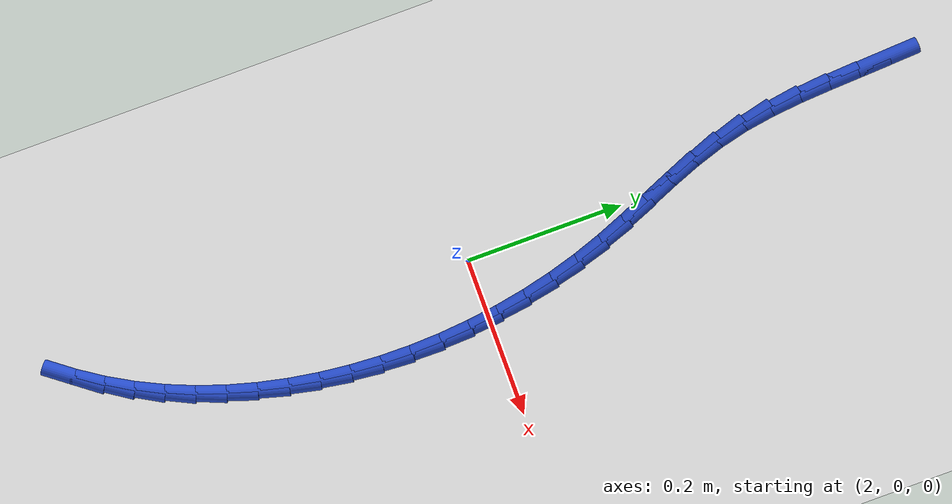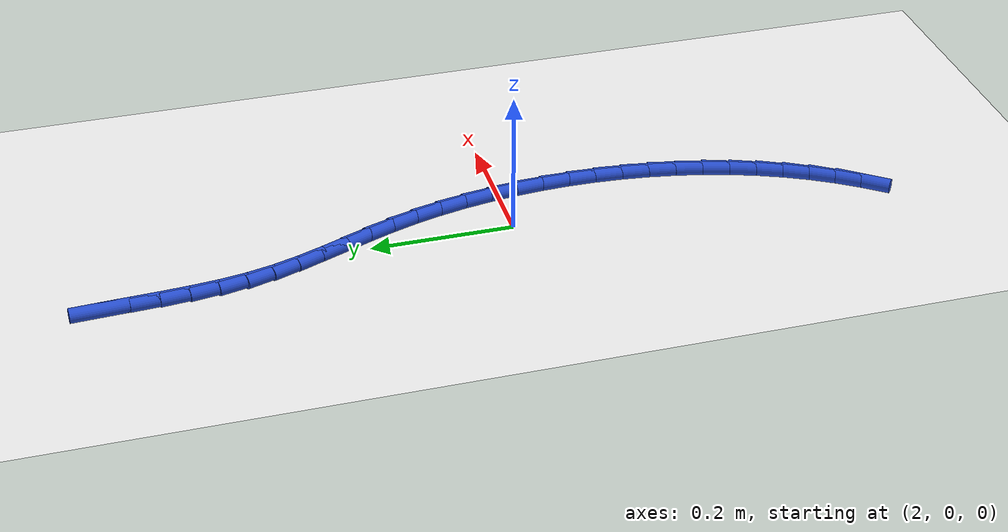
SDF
<sdf version="1.6">
 <world name="default">
  <model name="ground_plane">
   <static>1</static>
   <link name="link">
    <collision name="collision">
     <geometry><plane><normal>0 0 1</normal><size>100 100</size></plane></geometry>
     <surface><friction><ode><mu>100</mu><mu2>50</mu2></ode></friction></surface>
    </collision>
    <visual name="visual">
     <cast_shadows>0</cast_shadows>
     <geometry><plane><normal>0 0 1</normal><size>100 100</size></plane></geometry>
     <material>
      <script><uri>file://media/materials/scripts/gazebo.material</uri><name>Gazebo/WhiteGlow</name></script>
     </material>
    </visual>
   </link>
  </model>
  <model name="line">
   <link name="link_76">
    <pose>1.9415558615372037 0.5665186014770923 0.01 0 1.57 -1.5189127412592842</pose>
    <collision name="collision">
     <geometry><cylinder><radius>0.01</radius><length>0.08</length></cylinder></geometry>
    </collision>
    <visual name="visual">
     <material>
      <script><name>Gazebo/Blue</name><uri>file://media/materials/scripts/gazebo.material</uri></script>
     </material>
     <geometry><cylinder><radius>0.01</radius><length>0.08</length></cylinder></geometry>
    </visual>
   </link>
   <link name="link_77">
    <pose>1.9435597225822203 0.5279310090283251 0.01 0 1.57 -1.523355648347777</pose>
    <collision name="collision">
     <geometry><cylinder><radius>0.01</radius><length>0.08</length></cylinder></geometry>
    </collision>
    <visual name="visual">
     <material>
      <script><name>Gazebo/Blue</name><uri>file://media/materials/scripts/gazebo.material</uri></script>
     </material>
     <geometry><cylinder><radius>0.01</radius><length>0.08</length></cylinder></geometry>
    </visual>
   </link>
   <link name="link_78">
    <pose>1.9454072418871404 0.4890164501034754 0.01 0 1.57 -1.5081782893380407</pose>
    <collision name="collision">
     <geometry><cylinder><radius>0.01</radius><length>0.08</length></cylinder></geometry>
    </collision>
    <visual name="visual">
     <material>
      <script><name>Gazebo/Blue</name><uri>file://media/materials/scripts/gazebo.material</uri></script>
     </material>
     <geometry><cylinder><radius>0.01</radius><length>0.08</length></cylinder></geometry>
    </visual>
   </link>
   <link name="link_79">
    <pose>1.9478443605571356 0.45014693891050417 0.01 0 1.57 -1.4729970081427821</pose>
    <collision name="collision">
     <geometry><cylinder><radius>0.01</radius><length>0.08</length></cylinder></geometry>
    </collision>
    <visual name="visual">
     <material>
      <script><name>Gazebo/Blue</name><uri>file://media/materials/scripts/gazebo.material</uri></script>
     </material>
     <geometry><cylinder><radius>0.01</radius><length>0.08</length></cylinder></geometry>
    </visual>
   </link>
   <link name="link_80">
    <pose>1.951617019697378 0.4116944896573722 0.01 0 1.57 -1.4165969631609154</pose>
    <collision name="collision">
     <geometry><cylinder><radius>0.01</radius><length>0.08</length></cylinder></geometry>
    </collision>
    <visual name="visual">
     <material>
      <script><name>Gazebo/Blue</name><uri>file://media/materials/scripts/gazebo.material</uri></script>
     </material>
     <geometry><cylinder><radius>0.01</radius><length>0.08</length></cylinder></geometry>
    </visual>
   </link>
   <link name="link_81">
    <pose>1.9574711604130393 0.37403111655204174 0.01 0 1.57 -1.3382922465619933</pose>
    <collision name="collision">
     <geometry><cylinder><radius>0.01</radius><length>0.08</length></cylinder></geometry>
    </collision>
    <visual name="visual">
     <material>
      <script><name>Gazebo/Blue</name><uri>file://media/materials/scripts/gazebo.material</uri></script>
     </material>
     <geometry><cylinder><radius>0.01</radius><length>0.08</length></cylinder></geometry>
    </visual>
   </link>
   <link name="link_82">
    <pose>1.9661183977044896 0.3375119511595025 0.01 0 1.57 -1.2598143001252524</pose>
    <collision name="collision">
     <geometry><cylinder><radius>0.01</radius><length>0.08</length></cylinder></geometry>
    </collision>
    <visual name="visual">
     <material>
      <script><name>Gazebo/Blue</name><uri>file://media/materials/scripts/gazebo.material</uri></script>
     </material>
     <geometry><cylinder><radius>0.01</radius><length>0.08</length></cylinder></geometry>
    </visual>
   </link>
   <link name="link_83">
    <pose>1.9774964756654578 0.3021115113311145 0.01 0 1.57 -1.2050917626555757</pose>
    <collision name="collision">
     <geometry><cylinder><radius>0.01</radius><length>0.08</length></cylinder></geometry>
    </collision>
    <visual name="visual">
     <material>
      <script><name>Gazebo/Blue</name><uri>file://media/materials/scripts/gazebo.material</uri></script>
     </material>
     <geometry><cylinder><radius>0.01</radius><length>0.08</length></cylinder></geometry>
    </visual>
   </link>
   <link name="link_84">
    <pose>1.9907778522190458 0.2674279234440399 0.01 0 1.57 -1.1760649935759395</pose>
    <collision name="collision">
     <geometry><cylinder><radius>0.01</radius><length>0.08</length></cylinder></geometry>
    </collision>
    <visual name="visual">
     <material>
      <script><name>Gazebo/Blue</name><uri>file://media/materials/scripts/gazebo.material</uri></script>
     </material>
     <geometry><cylinder><radius>0.01</radius><length>0.08</length></cylinder></geometry>
    </visual>
   </link>
   <link name="link_85">
    <pose>2.0051023761977387 0.23304327571329653 0.01 0 1.57 -1.1727742127499625</pose>
    <collision name="collision">
     <geometry><cylinder><radius>0.01</radius><length>0.08</length></cylinder></geometry>
    </collision>
    <visual name="visual">
     <material>
      <script><name>Gazebo/Blue</name><uri>file://media/materials/scripts/gazebo.material</uri></script>
     </material>
     <geometry><cylinder><radius>0.01</radius><length>0.08</length></cylinder></geometry>
    </visual>
   </link>
   <link name="link_86">
    <pose>2.0196098964340194 0.19853965635390383 0.01 0 1.57 -1.1948702393190807</pose>
    <collision name="collision">
     <geometry><cylinder><radius>0.01</radius><length>0.08</length></cylinder></geometry>
    </collision>
    <visual name="visual">
     <material>
      <script><name>Gazebo/Blue</name><uri>file://media/materials/scripts/gazebo.material</uri></script>
     </material>
     <geometry><cylinder><radius>0.01</radius><length>0.08</length></cylinder></geometry>
    </visual>
   </link>
   <link name="link_87">
    <pose>2.033440261760374 0.16349915358087985 0.01 0 1.57 -1.239905362925592</pose>
    <collision name="collision">
     <geometry><cylinder><radius>0.01</radius><length>0.08</length></cylinder></geometry>
    </collision>
    <visual name="visual">
     <material>
      <script><name>Gazebo/Blue</name><uri>file://media/materials/scripts/gazebo.material</uri></script>
     </material>
     <geometry><cylinder><radius>0.01</radius><length>0.08</length></cylinder></geometry>
    </visual>
   </link>
   <link name="link_88">
    <pose>2.0457916765063926 0.12754377751374224 0.01 0 1.57 -1.29146088913155</pose>
    <collision name="collision">
     <geometry><cylinder><radius>0.01</radius><length>0.08</length></cylinder></geometry>
    </collision>
    <visual name="visual">
     <material>
      <script><name>Gazebo/Blue</name><uri>file://media/materials/scripts/gazebo.material</uri></script>
     </material>
     <geometry><cylinder><radius>0.01</radius><length>0.08</length></cylinder></geometry>
    </visual>
   </link>
   <link name="link_89">
    <pose>2.056375147080611 0.09064635416146669 0.01 0 1.57 -1.3415746979343444</pose>
    <collision name="collision">
     <geometry><cylinder><radius>0.01</radius><length>0.08</length></cylinder></geometry>
    </collision>
    <visual name="visual">
     <material>
      <script><name>Gazebo/Blue</name><uri>file://media/materials/scripts/gazebo.material</uri></script>
     </material>
     <geometry><cylinder><radius>0.01</radius><length>0.08</length></cylinder></geometry>
    </visual>
   </link>
   <link name="link_90">
    <pose>2.0651678069760186 0.05296177121662057 0.01 0 1.57 -1.3905682941542348</pose>
    <collision name="collision">
     <geometry><cylinder><radius>0.01</radius><length>0.08</length></cylinder></geometry>
    </collision>
    <visual name="visual">
     <material>
      <script><name>Gazebo/Blue</name><uri>file://media/materials/scripts/gazebo.material</uri></script>
     </material>
     <geometry><cylinder><radius>0.01</radius><length>0.08</length></cylinder></geometry>
    </visual>
   </link>
   <link name="link_91">
    <pose>2.0721490521801074 0.014646464179500588 0.01 0 1.57 -1.4388203211348392</pose>
    <collision name="collision">
     <geometry><cylinder><radius>0.01</radius><length>0.08</length></cylinder></geometry>
    </collision>
    <visual name="visual">
     <material>
      <script><name>Gazebo/Blue</name><uri>file://media/materials/scripts/gazebo.material</uri></script>
     </material>
     <geometry><cylinder><radius>0.01</radius><length>0.08</length></cylinder></geometry>
    </visual>
   </link>
   <link name="link_92">
    <pose>2.0772982786803693 -0.024143131449597448 0.01 0 1.57 -1.486699085714943</pose>
    <collision name="collision">
     <geometry><cylinder><radius>0.01</radius><length>0.08</length></cylinder></geometry>
    </collision>
    <visual name="visual">
     <material>
      <script><name>Gazebo/Blue</name><uri>file://media/materials/scripts/gazebo.material</uri></script>
     </material>
     <geometry><cylinder><radius>0.01</radius><length>0.08</length></cylinder></geometry>
    </visual>
   </link>
   <link name="link_93">
    <pose>2.0805948824642977 -0.06325058017037535 0.01 0 1.57 -1.534565227825704</pose>
    <collision name="collision">
     <geometry><cylinder><radius>0.01</radius><length>0.08</length></cylinder></geometry>
    </collision>
    <visual name="visual">
     <material>
      <script><name>Gazebo/Blue</name><uri>file://media/materials/scripts/gazebo.material</uri></script>
     </material>
     <geometry><cylinder><radius>0.01</radius><length>0.08</length></cylinder></geometry>
    </visual>
   </link>
   <link name="link_94">
    <pose>2.0820182595193835 -0.10251944648253725 0.01 0 1.57 1.5588180968719745</pose>
    <collision name="collision">
     <geometry><cylinder><radius>0.01</radius><length>0.08</length></cylinder></geometry>
    </collision>
    <visual name="visual">
     <material>
      <script><name>Gazebo/Blue</name><uri>file://media/materials/scripts/gazebo.material</uri></script>
     </material>
     <geometry><cylinder><radius>0.01</radius><length>0.08</length></cylinder></geometry>
    </visual>
   </link>
   <link name="link_95">
    <pose>2.0815478058331194 -0.14179329488578657 0.01 0 1.57 1.5099119953809008</pose>
    <collision name="collision">
     <geometry><cylinder><radius>0.01</radius><length>0.08</length></cylinder></geometry>
    </collision>
    <visual name="visual">
     <material>
      <script><name>Gazebo/Blue</name><uri>file://media/materials/scripts/gazebo.material</uri></script>
     </material>
     <geometry><cylinder><radius>0.01</radius><length>0.08</length></cylinder></geometry>
    </visual>
   </link>
   <link name="link_96">
    <pose>2.0791629173929973 -0.1809156898798266 0.01 0 1.57 1.4599557642248275</pose>
    <collision name="collision">
     <geometry><cylinder><radius>0.01</radius><length>0.08</length></cylinder></geometry>
    </collision>
    <visual name="visual">
     <material>
      <script><name>Gazebo/Blue</name><uri>file://media/materials/scripts/gazebo.material</uri></script>
     </material>
     <geometry><cylinder><radius>0.01</radius><length>0.08</length></cylinder></geometry>
    </visual>
   </link>
   <link name="link_97">
    <pose>2.0748429901865104 -0.21973019596436077 0.01 0 1.57 1.4085953166519352</pose>
    <collision name="collision">
     <geometry><cylinder><radius>0.01</radius><length>0.08</length></cylinder></geometry>
    </collision>
    <visual name="visual">
     <material>
      <script><name>Gazebo/Blue</name><uri>file://media/materials/scripts/gazebo.material</uri></script>
     </material>
     <geometry><cylinder><radius>0.01</radius><length>0.08</length></cylinder></geometry>
    </visual>
   </link>
   <link name="link_98">
    <pose>2.068567420201149 -0.25808037763909314 0.01 0 1.57 1.3554764227950484</pose>
    <collision name="collision">
     <geometry><cylinder><radius>0.01</radius><length>0.08</length></cylinder></geometry>
    </collision>
    <visual name="visual">
     <material>
      <script><name>Gazebo/Blue</name><uri>file://media/materials/scripts/gazebo.material</uri></script>
     </material>
     <geometry><cylinder><radius>0.01</radius><length>0.08</length></cylinder></geometry>
    </visual>
   </link>
   <link name="link_99">
    <pose>2.060315603424407 -0.29580979940372576 0.01 0 1.57 1.3002474690675225</pose>
    <collision name="collision">
     <geometry><cylinder><radius>0.01</radius><length>0.08</length></cylinder></geometry>
    </collision>
    <visual name="visual">
     <material>
      <script><name>Gazebo/Blue</name><uri>file://media/materials/scripts/gazebo.material</uri></script>
     </material>
     <geometry><cylinder><radius>0.01</radius><length>0.08</length></cylinder></geometry>
    </visual>
   </link>
   <link name="link_100">
    <pose>2.0500669358437755 -0.33276202575796254 0.01 0 1.57 1.2425651502127295</pose>
    <collision name="collision">
     <geometry><cylinder><radius>0.01</radius><length>0.08</length></cylinder></geometry>
    </collision>
    <visual name="visual">
     <material>
      <script><name>Gazebo/Blue</name><uri>file://media/materials/scripts/gazebo.material</uri></script>
     </material>
     <geometry><cylinder><radius>0.01</radius><length>0.08</length></cylinder></geometry>
    </visual>
   </link>
   <link name="link_101">
    <pose>2.037800813446747 -0.3687806212015068 0.01 0 1.57 1.182103958779731</pose>
    <collision name="collision">
     <geometry><cylinder><radius>0.01</radius><length>0.08</length></cylinder></geometry>
    </collision>
    <visual name="visual">
     <material>
      <script><name>Gazebo/Blue</name><uri>file://media/materials/scripts/gazebo.material</uri></script>
     </material>
     <geometry><cylinder><radius>0.01</radius><length>0.08</length></cylinder></geometry>
    </visual>
   </link>
   <link name="link_102">
    <pose>2.0234966322208146 -0.4037091502340622 0.01 0 1.57 1.1185703447691526</pose>
    <collision name="collision">
     <geometry><cylinder><radius>0.01</radius><length>0.08</length></cylinder></geometry>
    </collision>
    <visual name="visual">
     <material>
      <script><name>Gazebo/Blue</name><uri>file://media/materials/scripts/gazebo.material</uri></script>
     </material>
     <geometry><cylinder><radius>0.01</radius><length>0.08</length></cylinder></geometry>
    </visual>
   </link>
   <link name="link_103">
    <pose>2.0071337881534688 -0.43739117735533256 0.01 0 1.57 1.051722220558115</pose>
    <collision name="collision">
     <geometry><cylinder><radius>0.01</radius><length>0.08</length></cylinder></geometry>
    </collision>
    <visual name="visual">
     <material>
      <script><name>Gazebo/Blue</name><uri>file://media/materials/scripts/gazebo.material</uri></script>
     </material>
     <geometry><cylinder><radius>0.01</radius><length>0.08</length></cylinder></geometry>
    </visual>
   </link>
   <link name="link_104">
    <pose>1.9886916772322034 -0.4696702670650201 0.01 0 1.57 0.9828976712972358</pose>
    <collision name="collision">
     <geometry><cylinder><radius>0.01</radius><length>0.08</length></cylinder></geometry>
    </collision>
    <visual name="visual">
     <material>
      <script><name>Gazebo/Blue</name><uri>file://media/materials/scripts/gazebo.material</uri></script>
     </material>
     <geometry><cylinder><radius>0.01</radius><length>0.08</length></cylinder></geometry>
    </visual>
   </link>
   <link name="link_105">
    <pose>1.9681868824488886 -0.5004343874789349 0.01 0 1.57 0.9232230287726005</pose>
    <collision name="collision">
     <geometry><cylinder><radius>0.01</radius><length>0.08</length></cylinder></geometry>
    </collision>
    <visual name="visual">
     <material>
      <script><name>Gazebo/Blue</name><uri>file://media/materials/scripts/gazebo.material</uri></script>
     </material>
     <geometry><cylinder><radius>0.01</radius><length>0.08</length></cylinder></geometry>
    </visual>
   </link>
  </model>
 </world>
</sdf>
